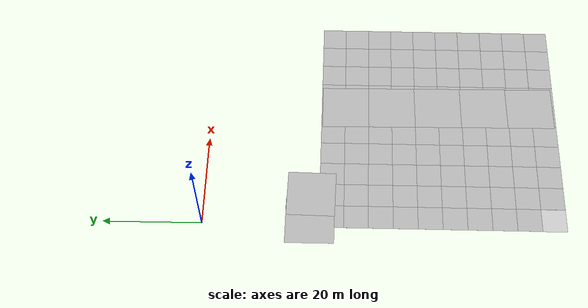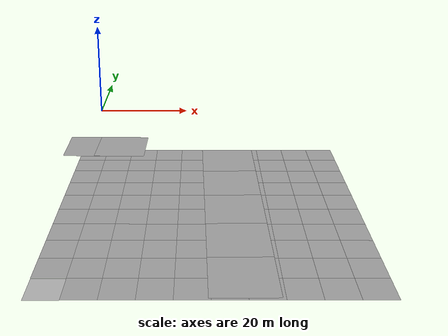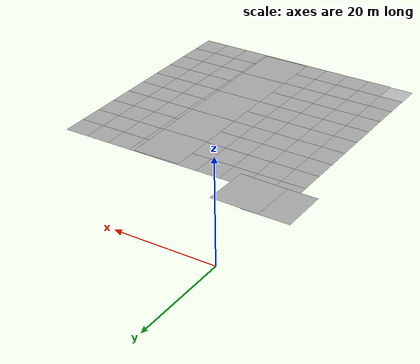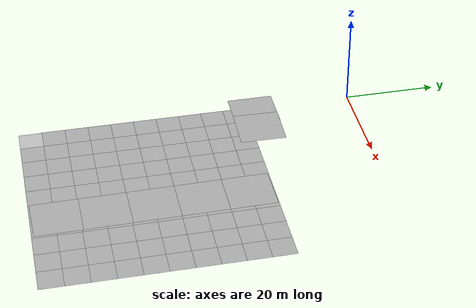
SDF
<sdf version="1.4">
 <world name="default">
  <model name="pavement_plane_0">
   <static>1</static>
   <link name="link">
    <collision name="collision">
     <geometry><plane><normal>0 0 1</normal><size>50 50</size></plane></geometry>
     <surface><friction><ode><mu>100</mu><mu2>50</mu2></ode></friction></surface>
    </collision>
    <visual name="visual_0">
     <pose>-25 -25 0 0 -0 0</pose>
     <cast_shadows>0</cast_shadows>
     <geometry><plane><normal>0 0 1</normal><size>5 5</size></plane></geometry>
     <material>
      <script>
       <uri>model://pavement_plane/materials/scripts</uri>
       <uri>model://pavement_plane/materials/textures</uri>
       <name>vrc/pavement</name>
      </script>
     </material>
    </visual>
    <visual name="visual_1">
     <pose>-20 -25 0 0 -0 0</pose>
     <cast_shadows>0</cast_shadows>
     <geometry><plane><normal>0 0 1</normal><size>5 5</size></plane></geometry>
     <material>
      <script>
       <uri>model://pavement_plane/materials/scripts</uri>
       <uri>model://pavement_plane/materials/textures</uri>
       <name>vrc/pavement</name>
      </script>
     </material>
    </visual>
    <visual name="visual_2">
     <pose>-15 -25 0 0 -0 0</pose>
     <cast_shadows>0</cast_shadows>
     <geometry><plane><normal>0 0 1</normal><size>5 5</size></plane></geometry>
     <material>
      <script>
       <uri>model://pavement_plane/materials/scripts</uri>
       <uri>model://pavement_plane/materials/textures</uri>
       <name>vrc/pavement</name>
      </script>
     </material>
    </visual>
    <visual name="visual_3">
     <pose>-10 -25 0 0 -0 0</pose>
     <cast_shadows>0</cast_shadows>
     <geometry><plane><normal>0 0 1</normal><size>5 5</size></plane></geometry>
     <material>
      <script>
       <uri>model://pavement_plane/materials/scripts</uri>
       <uri>model://pavement_plane/materials/textures</uri>
       <name>vrc/pavement</name>
      </script>
     </material>
    </visual>
    <visual name="visual_4">
     <pose>-5 -25 0 0 -0 0</pose>
     <cast_shadows>0</cast_shadows>
     <geometry><plane><normal>0 0 1</normal><size>5 5</size></plane></geometry>
     <material>
      <script>
       <uri>model://pavement_plane/materials/scripts</uri>
       <uri>model://pavement_plane/materials/textures</uri>
       <name>vrc/pavement</name>
      </script>
     </material>
    </visual>
    <visual name="visual_5">
     <pose>0 -25 0 0 -0 0</pose>
     <cast_shadows>0</cast_shadows>
     <geometry><plane><normal>0 0 1</normal><size>5 5</size></plane></geometry>
     <material>
      <script>
       <uri>model://pavement_plane/materials/scripts</uri>
       <uri>model://pavement_plane/materials/textures</uri>
       <name>vrc/pavement</name>
      </script>
     </material>
    </visual>
    <visual name="visual_6">
     <pose>5 -25 0 0 -0 0</pose>
     <cast_shadows>0</cast_shadows>
     <geometry><plane><normal>0 0 1</normal><size>5 5</size></plane></geometry>
     <material>
      <script>
       <uri>model://pavement_plane/materials/scripts</uri>
       <uri>model://pavement_plane/materials/textures</uri>
       <name>vrc/pavement</name>
      </script>
     </material>
    </visual>
    <visual name="visual_7">
     <pose>10 -25 0 0 -0 0</pose>
     <cast_shadows>0</cast_shadows>
     <geometry><plane><normal>0 0 1</normal><size>5 5</size></plane></geometry>
     <material>
      <script>
       <uri>model://pavement_plane/materials/scripts</uri>
       <uri>model://pavement_plane/materials/textures</uri>
       <name>vrc/pavement</name>
      </script>
     </material>
    </visual>
    <visual name="visual_8">
     <pose>15 -25 0 0 -0 0</pose>
     <cast_shadows>0</cast_shadows>
     <geometry><plane><normal>0 0 1</normal><size>5 5</size></plane></geometry>
     <material>
      <script>
       <uri>model://pavement_plane/materials/scripts</uri>
       <uri>model://pavement_plane/materials/textures</uri>
       <name>vrc/pavement</name>
      </script>
     </material>
    </visual>
    <visual name="visual_9">
     <pose>20 -25 0 0 -0 0</pose>
     <cast_shadows>0</cast_shadows>
     <geometry><plane><normal>0 0 1</normal><size>5 5</size></plane></geometry>
     <material>
      <script>
       <uri>model://pavement_plane/materials/scripts</uri>
       <uri>model://pavement_plane/materials/textures</uri>
       <name>vrc/pavement</name>
      </script>
     </material>
    </visual>
    <visual name="visual_10">
     <pose>-25 -20 0 0 -0 0</pose>
     <cast_shadows>0</cast_shadows>
     <geometry><plane><normal>0 0 1</normal><size>5 5</size></plane></geometry>
     <material>
      <script>
       <uri>model://pavement_plane/materials/scripts</uri>
       <uri>model://pavement_plane/materials/textures</uri>
       <name>vrc/pavement</name>
      </script>
     </material>
    </visual>
    <visual name="visual_11">
     <pose>-20 -20 0 0 -0 0</pose>
     <cast_shadows>0</cast_shadows>
     <geometry><plane><normal>0 0 1</normal><size>5 5</size></plane></geometry>
     <material>
      <script>
       <uri>model://pavement_plane/materials/scripts</uri>
       <uri>model://pavement_plane/materials/textures</uri>
       <name>vrc/pavement</name>
      </script>
     </material>
    </visual>
    <visual name="visual_12">
     <pose>-15 -20 0 0 -0 0</pose>
     <cast_shadows>0</cast_shadows>
     <geometry><plane><normal>0 0 1</normal><size>5 5</size></plane></geometry>
     <material>
      <script>
       <uri>model://pavement_plane/materials/scripts</uri>
       <uri>model://pavement_plane/materials/textures</uri>
       <name>vrc/pavement</name>
      </script>
     </material>
    </visual>
    <visual name="visual_13">
     <pose>-10 -20 0 0 -0 0</pose>
     <cast_shadows>0</cast_shadows>
     <geometry><plane><normal>0 0 1</normal><size>5 5</size></plane></geometry>
     <material>
      <script>
       <uri>model://pavement_plane/materials/scripts</uri>
       <uri>model://pavement_plane/materials/textures</uri>
       <name>vrc/pavement</name>
      </script>
     </material>
    </visual>
    <visual name="visual_14">
     <pose>-5 -20 0 0 -0 0</pose>
     <cast_shadows>0</cast_shadows>
     <geometry><plane><normal>0 0 1</normal><size>5 5</size></plane></geometry>
     <material>
      <script>
       <uri>model://pavement_plane/materials/scripts</uri>
       <uri>model://pavement_plane/materials/textures</uri>
       <name>vrc/pavement</name>
      </script>
     </material>
    </visual>
    <visual name="visual_15">
     <pose>0 -20 0 0 -0 0</pose>
     <cast_shadows>0</cast_shadows>
     <geometry><plane><normal>0 0 1</normal><size>5 5</size></plane></geometry>
     <material>
      <script>
       <uri>model://pavement_plane/materials/scripts</uri>
       <uri>model://pavement_plane/materials/textures</uri>
       <name>vrc/pavement</name>
      </script>
     </material>
    </visual>
    <visual name="visual_16">
     <pose>5 -20 0 0 -0 0</pose>
     <cast_shadows>0</cast_shadows>
     <geometry><plane><normal>0 0 1</normal><size>5 5</size></plane></geometry>
     <material>
      <script>
       <uri>model://pavement_plane/materials/scripts</uri>
       <uri>model://pavement_plane/materials/textures</uri>
       <name>vrc/pavement</name>
      </script>
     </material>
    </visual>
    <visual name="visual_17">
     <pose>10 -20 0 0 -0 0</pose>
     <cast_shadows>0</cast_shadows>
     <geometry><plane><normal>0 0 1</normal><size>5 5</size></plane></geometry>
     <material>
      <script>
       <uri>model://pavement_plane/materials/scripts</uri>
       <uri>model://pavement_plane/materials/textures</uri>
       <name>vrc/pavement</name>
      </script>
     </material>
    </visual>
    <visual name="visual_18">
     <pose>15 -20 0 0 -0 0</pose>
     <cast_shadows>0</cast_shadows>
     <geometry><plane><normal>0 0 1</normal><size>5 5</size></plane></geometry>
     <material>
      <script>
       <uri>model://pavement_plane/materials/scripts</uri>
       <uri>model://pavement_plane/materials/textures</uri>
       <name>vrc/pavement</name>
      </script>
     </material>
    </visual>
    <visual name="visual_19">
     <pose>20 -20 0 0 -0 0</pose>
     <cast_shadows>0</cast_shadows>
     <geometry><plane><normal>0 0 1</normal><size>5 5</size></plane></geometry>
     <material>
      <script>
       <uri>model://pavement_plane/materials/scripts</uri>
       <uri>model://pavement_plane/materials/textures</uri>
       <name>vrc/pavement</name>
      </script>
     </material>
    </visual>
    <visual name="visual_20">
     <pose>-25 -15 0 0 -0 0</pose>
     <cast_shadows>0</cast_shadows>
     <geometry><plane><normal>0 0 1</normal><size>5 5</size></plane></geometry>
     <material>
      <script>
       <uri>model://pavement_plane/materials/scripts</uri>
       <uri>model://pavement_plane/materials/textures</uri>
       <name>vrc/pavement</name>
      </script>
     </material>
    </visual>
    <visual name="visual_21">
     <pose>-20 -15 0 0 -0 0</pose>
     <cast_shadows>0</cast_shadows>
     <geometry><plane><normal>0 0 1</normal><size>5 5</size></plane></geometry>
     <material>
      <script>
       <uri>model://pavement_plane/materials/scripts</uri>
       <uri>model://pavement_plane/materials/textures</uri>
       <name>vrc/pavement</name>
      </script>
     </material>
    </visual>
    <visual name="visual_22">
     <pose>-15 -15 0 0 -0 0</pose>
     <cast_shadows>0</cast_shadows>
     <geometry><plane><normal>0 0 1</normal><size>5 5</size></plane></geometry>
     <material>
      <script>
       <uri>model://pavement_plane/materials/scripts</uri>
       <uri>model://pavement_plane/materials/textures</uri>
       <name>vrc/pavement</name>
      </script>
     </material>
    </visual>
    <visual name="visual_23">
     <pose>-10 -15 0 0 -0 0</pose>
     <cast_shadows>0</cast_shadows>
     <geometry><plane><normal>0 0 1</normal><size>5 5</size></plane></geometry>
     <material>
      <script>
       <uri>model://pavement_plane/materials/scripts</uri>
       <uri>model://pavement_plane/materials/textures</uri>
       <name>vrc/pavement</name>
      </script>
     </material>
    </visual>
    <visual name="visual_24">
     <pose>-5 -15 0 0 -0 0</pose>
     <cast_shadows>0</cast_shadows>
     <geometry><plane><normal>0 0 1</normal><size>5 5</size></plane></geometry>
     <material>
      <script>
       <uri>model://pavement_plane/materials/scripts</uri>
       <uri>model://pavement_plane/materials/textures</uri>
       <name>vrc/pavement</name>
      </script>
     </material>
    </visual>
    <visual name="visual_25">
     <pose>0 -15 0 0 -0 0</pose>
     <cast_shadows>0</cast_shadows>
     <geometry><plane><normal>0 0 1</normal><size>5 5</size></plane></geometry>
     <material>
      <script>
       <uri>model://pavement_plane/materials/scripts</uri>
       <uri>model://pavement_plane/materials/textures</uri>
       <name>vrc/pavement</name>
      </script>
     </material>
    </visual>
    <visual name="visual_26">
     <pose>5 -15 0 0 -0 0</pose>
     <cast_shadows>0</cast_shadows>
     <geometry><plane><normal>0 0 1</normal><size>5 5</size></plane></geometry>
     <material>
      <script>
       <uri>model://pavement_plane/materials/scripts</uri>
       <uri>model://pavement_plane/materials/textures</uri>
       <name>vrc/pavement</name>
      </script>
     </material>
    </visual>
    <visual name="visual_27">
     <pose>10 -15 0 0 -0 0</pose>
     <cast_shadows>0</cast_shadows>
     <geometry><plane><normal>0 0 1</normal><size>5 5</size></plane></geometry>
     <material>
      <script>
       <uri>model://pavement_plane/materials/scripts</uri>
       <uri>model://pavement_plane/materials/textures</uri>
       <name>vrc/pavement</name>
      </script>
     </material>
    </visual>
    <visual name="visual_28">
     <pose>15 -15 0 0 -0 0</pose>
     <cast_shadows>0</cast_shadows>
     <geometry><plane><normal>0 0 1</normal><size>5 5</size></plane></geometry>
     <material>
      <script>
       <uri>model://pavement_plane/materials/scripts</uri>
       <uri>model://pavement_plane/materials/textures</uri>
       <name>vrc/pavement</name>
      </script>
     </material>
    </visual>
    <visual name="visual_29">
     <pose>20 -15 0 0 -0 0</pose>
     <cast_shadows>0</cast_shadows>
     <geometry><plane><normal>0 0 1</normal><size>5 5</size></plane></geometry>
     <material>
      <script>
       <uri>model://pavement_plane/materials/scripts</uri>
       <uri>model://pavement_plane/materials/textures</uri>
       <name>vrc/pavement</name>
      </script>
     </material>
    </visual>
    <visual name="visual_30">
     <pose>-25 -10 0 0 -0 0</pose>
     <cast_shadows>0</cast_shadows>
     <geometry><plane><normal>0 0 1</normal><size>5 5</size></plane></geometry>
     <material>
      <script>
       <uri>model://pavement_plane/materials/scripts</uri>
       <uri>model://pavement_plane/materials/textures</uri>
       <name>vrc/pavement</name>
      </script>
     </material>
    </visual>
    <visual name="visual_31">
     <pose>-20 -10 0 0 -0 0</pose>
     <cast_shadows>0</cast_shadows>
     <geometry><plane><normal>0 0 1</normal><size>5 5</size></plane></geometry>
     <material>
      <script>
       <uri>model://pavement_plane/materials/scripts</uri>
       <uri>model://pavement_plane/materials/textures</uri>
       <name>vrc/pavement</name>
      </script>
     </material>
    </visual>
    <visual name="visual_32">
     <pose>-15 -10 0 0 -0 0</pose>
     <cast_shadows>0</cast_shadows>
     <geometry><plane><normal>0 0 1</normal><size>5 5</size></plane></geometry>
     <material>
      <script>
       <uri>model://pavement_plane/materials/scripts</uri>
       <uri>model://pavement_plane/materials/textures</uri>
       <name>vrc/pavement</name>
      </script>
     </material>
    </visual>
    <visual name="visual_33">
     <pose>-10 -10 0 0 -0 0</pose>
     <cast_shadows>0</cast_shadows>
     <geometry><plane><normal>0 0 1</normal><size>5 5</size></plane></geometry>
     <material>
      <script>
       <uri>model://pavement_plane/materials/scripts</uri>
       <uri>model://pavement_plane/materials/textures</uri>
       <name>vrc/pavement</name>
      </script>
     </material>
    </visual>
    <visual name="visual_34">
     <pose>-5 -10 0 0 -0 0</pose>
     <cast_shadows>0</cast_shadows>
     <geometry><plane><normal>0 0 1</normal><size>5 5</size></plane></geometry>
     <material>
      <script>
       <uri>model://pavement_plane/materials/scripts</uri>
       <uri>model://pavement_plane/materials/textures</uri>
       <name>vrc/pavement</name>
      </script>
     </material>
    </visual>
    <visual name="visual_35">
     <pose>0 -10 0 0 -0 0</pose>
     <cast_shadows>0</cast_shadows>
     <geometry><plane><normal>0 0 1</normal><size>5 5</size></plane></geometry>
     <material>
      <script>
       <uri>model://pavement_plane/materials/scripts</uri>
       <uri>model://pavement_plane/materials/textures</uri>
       <name>vrc/pavement</name>
      </script>
     </material>
    </visual>
    <visual name="visual_36">
     <pose>5 -10 0 0 -0 0</pose>
     <cast_shadows>0</cast_shadows>
     <geometry><plane><normal>0 0 1</normal><size>5 5</size></plane></geometry>
     <material>
      <script>
       <uri>model://pavement_plane/materials/scripts</uri>
       <uri>model://pavement_plane/materials/textures</uri>
       <name>vrc/pavement</name>
      </script>
     </material>
    </visual>
    <visual name="visual_37">
     <pose>10 -10 0 0 -0 0</pose>
     <cast_shadows>0</cast_shadows>
     <geometry><plane><normal>0 0 1</normal><size>5 5</size></plane></geometry>
     <material>
      <script>
       <uri>model://pavement_plane/materials/scripts</uri>
       <uri>model://pavement_plane/materials/textures</uri>
       <name>vrc/pavement</name>
      </script>
     </material>
    </visual>
    <visual name="visual_38">
     <pose>15 -10 0 0 -0 0</pose>
     <cast_shadows>0</cast_shadows>
     <geometry><plane><normal>0 0 1</normal><size>5 5</size></plane></geometry>
     <material>
      <script>
       <uri>model://pavement_plane/materials/scripts</uri>
       <uri>model://pavement_plane/materials/textures</uri>
       <name>vrc/pavement</name>
      </script>
     </material>
    </visual>
    <visual name="visual_39">
     <pose>20 -10 0 0 -0 0</pose>
     <cast_shadows>0</cast_shadows>
     <geometry><plane><normal>0 0 1</normal><size>5 5</size></plane></geometry>
     <material>
      <script>
       <uri>model://pavement_plane/materials/scripts</uri>
       <uri>model://pavement_plane/materials/textures</uri>
       <name>vrc/pavement</name>
      </script>
     </material>
    </visual>
    <visual name="visual_40">
     <pose>-25 -5 0 0 -0 0</pose>
     <cast_shadows>0</cast_shadows>
     <geometry><plane><normal>0 0 1</normal><size>5 5</size></plane></geometry>
     <material>
      <script>
       <uri>model://pavement_plane/materials/scripts</uri>
       <uri>model://pavement_plane/materials/textures</uri>
       <name>vrc/pavement</name>
      </script>
     </material>
    </visual>
    <visual name="visual_41">
     <pose>-20 -5 0 0 -0 0</pose>
     <cast_shadows>0</cast_shadows>
     <geometry><plane><normal>0 0 1</normal><size>5 5</size></plane></geometry>
     <material>
      <script>
       <uri>model://pavement_plane/materials/scripts</uri>
       <uri>model://pavement_plane/materials/textures</uri>
       <name>vrc/pavement</name>
      </script>
     </material>
    </visual>
    <visual name="visual_42">
     <pose>-15 -5 0 0 -0 0</pose>
     <cast_shadows>0</cast_shadows>
     <geometry><plane><normal>0 0 1</normal><size>5 5</size></plane></geometry>
     <material>
      <script>
       <uri>model://pavement_plane/materials/scripts</uri>
       <uri>model://pavement_plane/materials/textures</uri>
       <name>vrc/pavement</name>
      </script>
     </material>
    </visual>
    <visual name="visual_43">
     <pose>-10 -5 0 0 -0 0</pose>
     <cast_shadows>0</cast_shadows>
     <geometry><plane><normal>0 0 1</normal><size>5 5</size></plane></geometry>
     <material>
      <script>
       <uri>model://pavement_plane/materials/scripts</uri>
       <uri>model://pavement_plane/materials/textures</uri>
       <name>vrc/pavement</name>
      </script>
     </material>
    </visual>
    <visual name="visual_44">
     <pose>-5 -5 0 0 -0 0</pose>
     <cast_shadows>0</cast_shadows>
     <geometry><plane><normal>0 0 1</normal><size>5 5</size></plane></geometry>
     <material>
      <script>
       <uri>model://pavement_plane/materials/scripts</uri>
       <uri>model://pavement_plane/materials/textures</uri>
       <name>vrc/pavement</name>
      </script>
     </material>
    </visual>
    <visual name="visual_45">
     <pose>0 -5 0 0 -0 0</pose>
     <cast_shadows>0</cast_shadows>
     <geometry><plane><normal>0 0 1</normal><size>5 5</size></plane></geometry>
     <material>
      <script>
       <uri>model://pavement_plane/materials/scripts</uri>
       <uri>model://pavement_plane/materials/textures</uri>
       <name>vrc/pavement</name>
      </script>
     </material>
    </visual>
    <visual name="visual_46">
     <pose>5 -5 0 0 -0 0</pose>
     <cast_shadows>0</cast_shadows>
     <geometry><plane><normal>0 0 1</normal><size>5 5</size></plane></geometry>
     <material>
      <script>
       <uri>model://pavement_plane/materials/scripts</uri>
       <uri>model://pavement_plane/materials/textures</uri>
       <name>vrc/pavement</name>
      </script>
     </material>
    </visual>
    <visual name="visual_47">
     <pose>10 -5 0 0 -0 0</pose>
     <cast_shadows>0</cast_shadows>
     <geometry><plane><normal>0 0 1</normal><size>5 5</size></plane></geometry>
     <material>
      <script>
       <uri>model://pavement_plane/materials/scripts</uri>
       <uri>model://pavement_plane/materials/textures</uri>
       <name>vrc/pavement</name>
      </script>
     </material>
    </visual>
    <visual name="visual_48">
     <pose>15 -5 0 0 -0 0</pose>
     <cast_shadows>0</cast_shadows>
     <geometry><plane><normal>0 0 1</normal><size>5 5</size></plane></geometry>
     <material>
      <script>
       <uri>model://pavement_plane/materials/scripts</uri>
       <uri>model://pavement_plane/materials/textures</uri>
       <name>vrc/pavement</name>
      </script>
     </material>
    </visual>
    <visual name="visual_49">
     <pose>20 -5 0 0 -0 0</pose>
     <cast_shadows>0</cast_shadows>
     <geometry><plane><normal>0 0 1</normal><size>5 5</size></plane></geometry>
     <material>
      <script>
       <uri>model://pavement_plane/materials/scripts</uri>
       <uri>model://pavement_plane/materials/textures</uri>
       <name>vrc/pavement</name>
      </script>
     </material>
    </visual>
    <visual name="visual_50">
     <pose>-25 0 0 0 -0 0</pose>
     <cast_shadows>0</cast_shadows>
     <geometry><plane><normal>0 0 1</normal><size>5 5</size></plane></geometry>
     <material>
      <script>
       <uri>model://pavement_plane/materials/scripts</uri>
       <uri>model://pavement_plane/materials/textures</uri>
       <name>vrc/pavement</name>
      </script>
     </material>
    </visual>
    <visual name="visual_51">
     <pose>-20 0 0 0 -0 0</pose>
     <cast_shadows>0</cast_shadows>
     <geometry><plane><normal>0 0 1</normal><size>5 5</size></plane></geometry>
     <material>
      <script>
       <uri>model://pavement_plane/materials/scripts</uri>
       <uri>model://pavement_plane/materials/textures</uri>
       <name>vrc/pavement</name>
      </script>
     </material>
    </visual>
    <visual name="visual_52">
     <pose>-15 0 0 0 -0 0</pose>
     <cast_shadows>0</cast_shadows>
     <geometry><plane><normal>0 0 1</normal><size>5 5</size></plane></geometry>
     <material>
      <script>
       <uri>model://pavement_plane/materials/scripts</uri>
       <uri>model://pavement_plane/materials/textures</uri>
       <name>vrc/pavement</name>
      </script>
     </material>
    </visual>
    <visual name="visual_53">
     <pose>-10 0 0 0 -0 0</pose>
     <cast_shadows>0</cast_shadows>
     <geometry><plane><normal>0 0 1</normal><size>5 5</size></plane></geometry>
     <material>
      <script>
       <uri>model://pavement_plane/materials/scripts</uri>
       <uri>model://pavement_plane/materials/textures</uri>
       <name>vrc/pavement</name>
      </script>
     </material>
    </visual>
    <visual name="visual_54">
     <pose>-5 0 0 0 -0 0</pose>
     <cast_shadows>0</cast_shadows>
     <geometry><plane><normal>0 0 1</normal><size>5 5</size></plane></geometry>
     <material>
      <script>
       <uri>model://pavement_plane/materials/scripts</uri>
       <uri>model://pavement_plane/materials/textures</uri>
       <name>vrc/pavement</name>
      </script>
     </material>
    </visual>
    <visual name="visual_55">
     <cast_shadows>0</cast_shadows>
     <geometry><plane><normal>0 0 1</normal><size>5 5</size></plane></geometry>
     <material>
      <script>
       <uri>model://pavement_plane/materials/scripts</uri>
       <uri>model://pavement_plane/materials/textures</uri>
       <name>vrc/pavement</name>
      </script>
     </material>
    </visual>
    <visual name="visual_56">
     <pose>5 0 0 0 -0 0</pose>
     <cast_shadows>0</cast_shadows>
     <geometry><plane><normal>0 0 1</normal><size>5 5</size></plane></geometry>
     <material>
      <script>
       <uri>model://pavement_plane/materials/scripts</uri>
       <uri>model://pavement_plane/materials/textures</uri>
       <name>vrc/pavement</name>
      </script>
     </material>
    </visual>
    <visual name="visual_57">
     <pose>10 0 0 0 -0 0</pose>
     <cast_shadows>0</cast_shadows>
     <geometry><plane><normal>0 0 1</normal><size>5 5</size></plane></geometry>
     <material>
      <script>
       <uri>model://pavement_plane/materials/scripts</uri>
       <uri>model://pavement_plane/materials/textures</uri>
       <name>vrc/pavement</name>
      </script>
     </material>
    </visual>
    <visual name="visual_58">
     <pose>15 0 0 0 -0 0</pose>
     <cast_shadows>0</cast_shadows>
     <geometry><plane><normal>0 0 1</normal><size>5 5</size></plane></geometry>
     <material>
      <script>
       <uri>model://pavement_plane/materials/scripts</uri>
       <uri>model://pavement_plane/materials/textures</uri>
       <name>vrc/pavement</name>
      </script>
     </material>
    </visual>
    <visual name="visual_59">
     <pose>20 0 0 0 -0 0</pose>
     <cast_shadows>0</cast_shadows>
     <geometry><plane><normal>0 0 1</normal><size>5 5</size></plane></geometry>
     <material>
      <script>
       <uri>model://pavement_plane/materials/scripts</uri>
       <uri>model://pavement_plane/materials/textures</uri>
       <name>vrc/pavement</name>
      </script>
     </material>
    </visual>
    <visual name="visual_60">
     <pose>-25 5 0 0 -0 0</pose>
     <cast_shadows>0</cast_shadows>
     <geometry><plane><normal>0 0 1</normal><size>5 5</size></plane></geometry>
     <material>
      <script>
       <uri>model://pavement_plane/materials/scripts</uri>
       <uri>model://pavement_plane/materials/textures</uri>
       <name>vrc/pavement</name>
      </script>
     </material>
    </visual>
    <visual name="visual_61">
     <pose>-20 5 0 0 -0 0</pose>
     <cast_shadows>0</cast_shadows>
     <geometry><plane><normal>0 0 1</normal><size>5 5</size></plane></geometry>
     <material>
      <script>
       <uri>model://pavement_plane/materials/scripts</uri>
       <uri>model://pavement_plane/materials/textures</uri>
       <name>vrc/pavement</name>
      </script>
     </material>
    </visual>
    <visual name="visual_62">
     <pose>-15 5 0 0 -0 0</pose>
     <cast_shadows>0</cast_shadows>
     <geometry><plane><normal>0 0 1</normal><size>5 5</size></plane></geometry>
     <material>
      <script>
       <uri>model://pavement_plane/materials/scripts</uri>
       <uri>model://pavement_plane/materials/textures</uri>
       <name>vrc/pavement</name>
      </script>
     </material>
    </visual>
    <visual name="visual_63">
     <pose>-10 5 0 0 -0 0</pose>
     <cast_shadows>0</cast_shadows>
     <geometry><plane><normal>0 0 1</normal><size>5 5</size></plane></geometry>
     <material>
      <script>
       <uri>model://pavement_plane/materials/scripts</uri>
       <uri>model://pavement_plane/materials/textures</uri>
       <name>vrc/pavement</name>
      </script>
     </material>
    </visual>
    <visual name="visual_64">
     <pose>-5 5 0 0 -0 0</pose>
     <cast_shadows>0</cast_shadows>
     <geometry><plane><normal>0 0 1</normal><size>5 5</size></plane></geometry>
     <material>
      <script>
       <uri>model://pavement_plane/materials/scripts</uri>
       <uri>model://pavement_plane/materials/textures</uri>
       <name>vrc/pavement</name>
      </script>
     </material>
    </visual>
    <visual name="visual_65">
     <pose>0 5 0 0 -0 0</pose>
     <cast_shadows>0</cast_shadows>
     <geometry><plane><normal>0 0 1</normal><size>5 5</size></plane></geometry>
     <material>
      <script>
       <uri>model://pavement_plane/materials/scripts</uri>
       <uri>model://pavement_plane/materials/textures</uri>
       <name>vrc/pavement</name>
      </script>
     </material>
    </visual>
    <visual name="visual_66">
     <pose>5 5 0 0 -0 0</pose>
     <cast_shadows>0</cast_shadows>
     <geometry><plane><normal>0 0 1</normal><size>5 5</size></plane></geometry>
     <material>
      <script>
       <uri>model://pavement_plane/materials/scripts</uri>
       <uri>model://pavement_plane/materials/textures</uri>
       <name>vrc/pavement</name>
      </script>
     </material>
    </visual>
    <visual name="visual_67">
     <pose>10 5 0 0 -0 0</pose>
     <cast_shadows>0</cast_shadows>
     <geometry><plane><normal>0 0 1</normal><size>5 5</size></plane></geometry>
     <material>
      <script>
       <uri>model://pavement_plane/materials/scripts</uri>
       <uri>model://pavement_plane/materials/textures</uri>
       <name>vrc/pavement</name>
      </script>
     </material>
    </visual>
    <visual name="visual_68">
     <pose>15 5 0 0 -0 0</pose>
     <cast_shadows>0</cast_shadows>
     <geometry><plane><normal>0 0 1</normal><size>5 5</size></plane></geometry>
     <material>
      <script>
       <uri>model://pavement_plane/materials/scripts</uri>
       <uri>model://pavement_plane/materials/textures</uri>
       <name>vrc/pavement</name>
      </script>
     </material>
    </visual>
    <visual name="visual_69">
     <pose>20 5 0 0 -0 0</pose>
     <cast_shadows>0</cast_shadows>
     <geometry><plane><normal>0 0 1</normal><size>5 5</size></plane></geometry>
     <material>
      <script>
       <uri>model://pavement_plane/materials/scripts</uri>
       <uri>model://pavement_plane/materials/textures</uri>
       <name>vrc/pavement</name>
      </script>
     </material>
    </visual>
    <visual name="visual_70">
     <pose>-25 10 0 0 -0 0</pose>
     <cast_shadows>0</cast_shadows>
     <geometry><plane><normal>0 0 1</normal><size>5 5</size></plane></geometry>
     <material>
      <script>
       <uri>model://pavement_plane/materials/scripts</uri>
       <uri>model://pavement_plane/materials/textures</uri>
       <name>vrc/pavement</name>
      </script>
     </material>
    </visual>
    <visual name="visual_71">
     <pose>-20 10 0 0 -0 0</pose>
     <cast_shadows>0</cast_shadows>
     <geometry><plane><normal>0 0 1</normal><size>5 5</size></plane></geometry>
     <material>
      <script>
       <uri>model://pavement_plane/materials/scripts</uri>
       <uri>model://pavement_plane/materials/textures</uri>
       <name>vrc/pavement</name>
      </script>
     </material>
    </visual>
    <visual name="visual_72">
     <pose>-15 10 0 0 -0 0</pose>
     <cast_shadows>0</cast_shadows>
     <geometry><plane><normal>0 0 1</normal><size>5 5</size></plane></geometry>
     <material>
      <script>
       <uri>model://pavement_plane/materials/scripts</uri>
       <uri>model://pavement_plane/materials/textures</uri>
       <name>vrc/pavement</name>
      </script>
     </material>
    </visual>
    <visual name="visual_73">
     <pose>-10 10 0 0 -0 0</pose>
     <cast_shadows>0</cast_shadows>
     <geometry><plane><normal>0 0 1</normal><size>5 5</size></plane></geometry>
     <material>
      <script>
       <uri>model://pavement_plane/materials/scripts</uri>
       <uri>model://pavement_plane/materials/textures</uri>
       <name>vrc/pavement</name>
      </script>
     </material>
    </visual>
    <visual name="visual_74">
     <pose>-5 10 0 0 -0 0</pose>
     <cast_shadows>0</cast_shadows>
     <geometry><plane><normal>0 0 1</normal><size>5 5</size></plane></geometry>
     <material>
      <script>
       <uri>model://pavement_plane/materials/scripts</uri>
       <uri>model://pavement_plane/materials/textures</uri>
       <name>vrc/pavement</name>
      </script>
     </material>
    </visual>
    <visual name="visual_75">
     <pose>0 10 0 0 -0 0</pose>
     <cast_shadows>0</cast_shadows>
     <geometry><plane><normal>0 0 1</normal><size>5 5</size></plane></geometry>
     <material>
      <script>
       <uri>model://pavement_plane/materials/scripts</uri>
       <uri>model://pavement_plane/materials/textures</uri>
       <name>vrc/pavement</name>
      </script>
     </material>
    </visual>
    <visual name="visual_76">
     <pose>5 10 0 0 -0 0</pose>
     <cast_shadows>0</cast_shadows>
     <geometry><plane><normal>0 0 1</normal><size>5 5</size></plane></geometry>
     <material>
      <script>
       <uri>model://pavement_plane/materials/scripts</uri>
       <uri>model://pavement_plane/materials/textures</uri>
       <name>vrc/pavement</name>
      </script>
     </material>
    </visual>
    <visual name="visual_77">
     <pose>10 10 0 0 -0 0</pose>
     <cast_shadows>0</cast_shadows>
     <geometry><plane><normal>0 0 1</normal><size>5 5</size></plane></geometry>
     <material>
      <script>
       <uri>model://pavement_plane/materials/scripts</uri>
       <uri>model://pavement_plane/materials/textures</uri>
       <name>vrc/pavement</name>
      </script>
     </material>
    </visual>
    <visual name="visual_78">
     <pose>15 10 0 0 -0 0</pose>
     <cast_shadows>0</cast_shadows>
     <geometry><plane><normal>0 0 1</normal><size>5 5</size></plane></geometry>
     <material>
      <script>
       <uri>model://pavement_plane/materials/scripts</uri>
       <uri>model://pavement_plane/materials/textures</uri>
       <name>vrc/pavement</name>
      </script>
     </material>
    </visual>
    <visual name="visual_79">
     <pose>20 10 0 0 -0 0</pose>
     <cast_shadows>0</cast_shadows>
     <geometry><plane><normal>0 0 1</normal><size>5 5</size></plane></geometry>
     <material>
      <script>
       <uri>model://pavement_plane/materials/scripts</uri>
       <uri>model://pavement_plane/materials/textures</uri>
       <name>vrc/pavement</name>
      </script>
     </material>
    </visual>
    <visual name="visual_80">
     <pose>-25 15 0 0 -0 0</pose>
     <cast_shadows>0</cast_shadows>
     <geometry><plane><normal>0 0 1</normal><size>5 5</size></plane></geometry>
     <material>
      <script>
       <uri>model://pavement_plane/materials/scripts</uri>
       <uri>model://pavement_plane/materials/textures</uri>
       <name>vrc/pavement</name>
      </script>
     </material>
    </visual>
    <visual name="visual_81">
     <pose>-20 15 0 0 -0 0</pose>
     <cast_shadows>0</cast_shadows>
     <geometry><plane><normal>0 0 1</normal><size>5 5</size></plane></geometry>
     <material>
      <script>
       <uri>model://pavement_plane/materials/scripts</uri>
       <uri>model://pavement_plane/materials/textures</uri>
       <name>vrc/pavement</name>
      </script>
     </material>
    </visual>
    <visual name="visual_82">
     <pose>-15 15 0 0 -0 0</pose>
     <cast_shadows>0</cast_shadows>
     <geometry><plane><normal>0 0 1</normal><size>5 5</size></plane></geometry>
     <material>
      <script>
       <uri>model://pavement_plane/materials/scripts</uri>
       <uri>model://pavement_plane/materials/textures</uri>
       <name>vrc/pavement</name>
      </script>
     </material>
    </visual>
    <visual name="visual_83">
     <pose>-10 15 0 0 -0 0</pose>
     <cast_shadows>0</cast_shadows>
     <geometry><plane><normal>0 0 1</normal><size>5 5</size></plane></geometry>
     <material>
      <script>
       <uri>model://pavement_plane/materials/scripts</uri>
       <uri>model://pavement_plane/materials/textures</uri>
       <name>vrc/pavement</name>
      </script>
     </material>
    </visual>
    <visual name="visual_84">
     <pose>-5 15 0 0 -0 0</pose>
     <cast_shadows>0</cast_shadows>
     <geometry><plane><normal>0 0 1</normal><size>5 5</size></plane></geometry>
     <material>
      <script>
       <uri>model://pavement_plane/materials/scripts</uri>
       <uri>model://pavement_plane/materials/textures</uri>
       <name>vrc/pavement</name>
      </script>
     </material>
    </visual>
    <visual name="visual_85">
     <pose>0 15 0 0 -0 0</pose>
     <cast_shadows>0</cast_shadows>
     <geometry><plane><normal>0 0 1</normal><size>5 5</size></plane></geometry>
     <material>
      <script>
       <uri>model://pavement_plane/materials/scripts</uri>
       <uri>model://pavement_plane/materials/textures</uri>
       <name>vrc/pavement</name>
      </script>
     </material>
    </visual>
    <visual name="visual_86">
     <pose>5 15 0 0 -0 0</pose>
     <cast_shadows>0</cast_shadows>
     <geometry><plane><normal>0 0 1</normal><size>5 5</size></plane></geometry>
     <material>
      <script>
       <uri>model://pavement_plane/materials/scripts</uri>
       <uri>model://pavement_plane/materials/textures</uri>
       <name>vrc/pavement</name>
      </script>
     </material>
    </visual>
    <visual name="visual_87">
     <pose>10 15 0 0 -0 0</pose>
     <cast_shadows>0</cast_shadows>
     <geometry><plane><normal>0 0 1</normal><size>5 5</size></plane></geometry>
     <material>
      <script>
       <uri>model://pavement_plane/materials/scripts</uri>
       <uri>model://pavement_plane/materials/textures</uri>
       <name>vrc/pavement</name>
      </script>
     </material>
    </visual>
    <visual name="visual_88">
     <pose>15 15 0 0 -0 0</pose>
     <cast_shadows>0</cast_shadows>
     <geometry><plane><normal>0 0 1</normal><size>5 5</size></plane></geometry>
     <material>
      <script>
       <uri>model://pavement_plane/materials/scripts</uri>
       <uri>model://pavement_plane/materials/textures</uri>
       <name>vrc/pavement</name>
      </script>
     </material>
    </visual>
    <visual name="visual_89">
     <pose>20 15 0 0 -0 0</pose>
     <cast_shadows>0</cast_shadows>
     <geometry><plane><normal>0 0 1</normal><size>5 5</size></plane></geometry>
     <material>
      <script>
       <uri>model://pavement_plane/materials/scripts</uri>
       <uri>model://pavement_plane/materials/textures</uri>
       <name>vrc/pavement</name>
      </script>
     </material>
    </visual>
    <visual name="visual_90">
     <pose>-25 20 0 0 -0 0</pose>
     <cast_shadows>0</cast_shadows>
     <geometry><plane><normal>0 0 1</normal><size>5 5</size></plane></geometry>
     <material>
      <script>
       <uri>model://pavement_plane/materials/scripts</uri>
       <uri>model://pavement_plane/materials/textures</uri>
       <name>vrc/pavement</name>
      </script>
     </material>
    </visual>
    <visual name="visual_91">
     <pose>-20 20 0 0 -0 0</pose>
     <cast_shadows>0</cast_shadows>
     <geometry><plane><normal>0 0 1</normal><size>5 5</size></plane></geometry>
     <material>
      <script>
       <uri>model://pavement_plane/materials/scripts</uri>
       <uri>model://pavement_plane/materials/textures</uri>
       <name>vrc/pavement</name>
      </script>
     </material>
    </visual>
    <visual name="visual_92">
     <pose>-15 20 0 0 -0 0</pose>
     <cast_shadows>0</cast_shadows>
     <geometry><plane><normal>0 0 1</normal><size>5 5</size></plane></geometry>
     <material>
      <script>
       <uri>model://pavement_plane/materials/scripts</uri>
       <uri>model://pavement_plane/materials/textures</uri>
       <name>vrc/pavement</name>
      </script>
     </material>
    </visual>
    <visual name="visual_93">
     <pose>-10 20 0 0 -0 0</pose>
     <cast_shadows>0</cast_shadows>
     <geometry><plane><normal>0 0 1</normal><size>5 5</size></plane></geometry>
     <material>
      <script>
       <uri>model://pavement_plane/materials/scripts</uri>
       <uri>model://pavement_plane/materials/textures</uri>
       <name>vrc/pavement</name>
      </script>
     </material>
    </visual>
    <visual name="visual_94">
     <pose>-5 20 0 0 -0 0</pose>
     <cast_shadows>0</cast_shadows>
     <geometry><plane><normal>0 0 1</normal><size>5 5</size></plane></geometry>
     <material>
      <script>
       <uri>model://pavement_plane/materials/scripts</uri>
       <uri>model://pavement_plane/materials/textures</uri>
       <name>vrc/pavement</name>
      </script>
     </material>
    </visual>
    <visual name="visual_95">
     <pose>0 20 0 0 -0 0</pose>
     <cast_shadows>0</cast_shadows>
     <geometry><plane><normal>0 0 1</normal><size>5 5</size></plane></geometry>
     <material>
      <script>
       <uri>model://pavement_plane/materials/scripts</uri>
       <uri>model://pavement_plane/materials/textures</uri>
       <name>vrc/pavement</name>
      </script>
     </material>
    </visual>
    <visual name="visual_96">
     <pose>5 20 0 0 -0 0</pose>
     <cast_shadows>0</cast_shadows>
     <geometry><plane><normal>0 0 1</normal><size>5 5</size></plane></geometry>
     <material>
      <script>
       <uri>model://pavement_plane/materials/scripts</uri>
       <uri>model://pavement_plane/materials/textures</uri>
       <name>vrc/pavement</name>
      </script>
     </material>
    </visual>
    <visual name="visual_97">
     <pose>10 20 0 0 -0 0</pose>
     <cast_shadows>0</cast_shadows>
     <geometry><plane><normal>0 0 1</normal><size>5 5</size></plane></geometry>
     <material>
      <script>
       <uri>model://pavement_plane/materials/scripts</uri>
       <uri>model://pavement_plane/materials/textures</uri>
       <name>vrc/pavement</name>
      </script>
     </material>
    </visual>
    <visual name="visual_98">
     <pose>15 20 0 0 -0 0</pose>
     <cast_shadows>0</cast_shadows>
     <geometry><plane><normal>0 0 1</normal><size>5 5</size></plane></geometry>
     <material>
      <script>
       <uri>model://pavement_plane/materials/scripts</uri>
       <uri>model://pavement_plane/materials/textures</uri>
       <name>vrc/pavement</name>
      </script>
     </material>
    </visual>
    <visual name="visual_99">
     <pose>20 20 0 0 -0 0</pose>
     <cast_shadows>0</cast_shadows>
     <geometry><plane><normal>0 0 1</normal><size>5 5</size></plane></geometry>
     <material>
      <script>
       <uri>model://pavement_plane/materials/scripts</uri>
       <uri>model://pavement_plane/materials/textures</uri>
       <name>vrc/pavement</name>
      </script>
     </material>
    </visual>
    <velocity_decay><linear>0</linear><angular>0</angular></velocity_decay>
   </link>
   <pose>27 -46 0 0 -0 0</pose>
  </model>
  <model name="Road_straight">
   <static>1</static>
   <pose>29 -68 0 0 0 -1.56</pose>
   <link name="link">
    <visual name="visual">
     <pose>0 0 0.04 0 -0 0</pose>
     <geometry>
      <mesh><uri>model://Road_straight/models/Road 01.dae</uri><scale>0.39 0.39 1</scale></mesh>
     </geometry>
    </visual>
    <velocity_decay><linear>0</linear><angular>0</angular></velocity_decay>
   </link>
  </model>
  <model name="Road_straight_0">
   <static>1</static>
   <pose>28.906 -58.1093 0 0 0 -1.56</pose>
   <link name="link">
    <visual name="visual">
     <pose>0 0 0.04 0 -0 0</pose>
     <geometry>
      <mesh><uri>model://Road_straight/models/Road 01.dae</uri><scale>0.39 0.39 1</scale></mesh>
     </geometry>
    </visual>
    <velocity_decay><linear>0</linear><angular>0</angular></velocity_decay>
   </link>
  </model>
  <model name="Road_straight_2">
   <static>1</static>
   <pose>28.7979 -48.2289 0 0 0 -1.56</pose>
   <link name="link">
    <visual name="visual">
     <pose>0 0 0.04 0 -0 0</pose>
     <geometry>
      <mesh><uri>model://Road_straight/models/Road 01.dae</uri><scale>0.39 0.39 1</scale></mesh>
     </geometry>
    </visual>
    <velocity_decay><linear>0</linear><angular>0</angular></velocity_decay>
   </link>
  </model>
  <model name="Road_straight_3">
   <static>1</static>
   <pose>28.6795 -38.3333 0 0 0 -1.56</pose>
   <link name="link">
    <visual name="visual">
     <pose>0 0 0.04 0 -0 0</pose>
     <geometry>
      <mesh><uri>model://Road_straight/models/Road 01.dae</uri><scale>0.39 0.39 1</scale></mesh>
     </geometry>
    </visual>
    <velocity_decay><linear>0</linear><angular>0</angular></velocity_decay>
   </link>
  </model>
  <model name="Road_straight_4">
   <static>1</static>
   <pose>28.5728 -28.464 0 0 0 -1.56</pose>
   <link name="link">
    <visual name="visual">
     <pose>0 0 0.04 0 -0 0</pose>
     <geometry>
      <mesh><uri>model://Road_straight/models/Road 01.dae</uri><scale>0.39 0.39 1</scale></mesh>
     </geometry>
    </visual>
    <velocity_decay><linear>0</linear><angular>0</angular></velocity_decay>
   </link>
  </model>
  <model name="Road_straight_26">
   <static>1</static>
   <pose>0.719651 -21.7013 0.01 0 -0 0</pose>
   <link name="link">
    <visual name="visual">
     <pose>0 0 0.04 0 -0 0</pose>
     <geometry>
      <mesh><uri>model://Road_straight/models/Road 01.dae</uri><scale>0.39 0.39 1</scale></mesh>
     </geometry>
    </visual>
    <velocity_decay><linear>0</linear><angular>0</angular></velocity_decay>
   </link>
  </model>
  <model name="Road_hard_curve_14">
   <static>1</static>
   <pose>6.60798 -20.6136 0.03 0 -0 3.12</pose>
   <link name="link">
    <visual name="visual">
     <pose>0 0 0.04 0 -0 0</pose>
     <geometry>
      <mesh><uri>model://Road_hard_curve/models/Road 09.dae</uri><scale>0.39 0.39 1</scale></mesh>
     </geometry>
    </visual>
    <velocity_decay><linear>0</linear><angular>0</angular></velocity_decay>
   </link>
  </model>
 </world>
</sdf>
